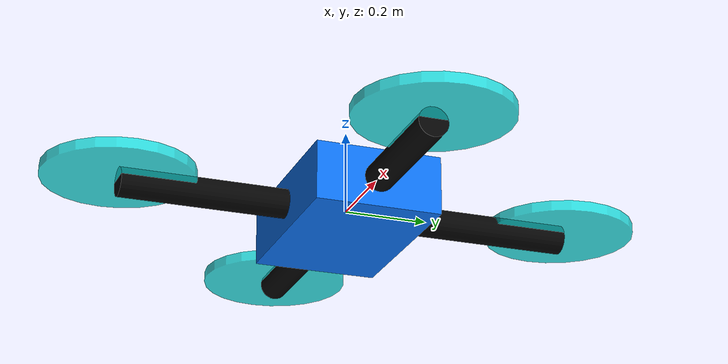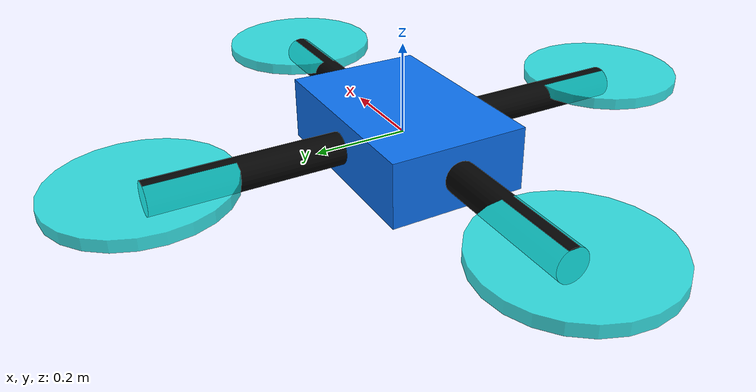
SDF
<?xml version="1.0"?>
<sdf version="1.6">
  <model name="target_uav">
    <static>false</static>
    <self_collide>false</self_collide>
    <link name="base_link">
      <gravity>false</gravity>
      <inertial>
        <mass>0.5</mass>
        <inertia>
          <ixx>0.02</ixx>
          <iyy>0.02</iyy>
          <izz>0.04</izz>
          <ixy>0</ixy>
          <ixz>0</ixz>
          <iyz>0</iyz>
        </inertia>
      </inertial>

      <collision name="lidar_detection_collision">
        <pose>0 0 0.03 0 0 0</pose>
        <laser_retro>200</laser_retro>
        <geometry>
          <box>
            <size>1.20 1.20 0.30</size>
          </box>
        </geometry>
      </collision>

      <visual name="body">
        <geometry>
          <box>
            <size>0.45 0.30 0.14</size>
          </box>
        </geometry>
        <material>
          <ambient>0.05 0.45 0.95 1</ambient>
          <diffuse>0.05 0.45 0.95 1</diffuse>
          <specular>0.1 0.1 0.1 1</specular>
        </material>
      </visual>

      <visual name="arm_x">
        <pose>0 0 0 0 1.57079632679 0</pose>
        <geometry>
          <cylinder>
            <radius>0.035</radius>
            <length>1.10</length>
          </cylinder>
        </geometry>
        <material>
          <ambient>0.02 0.02 0.02 1</ambient>
          <diffuse>0.02 0.02 0.02 1</diffuse>
        </material>
      </visual>

      <visual name="arm_y">
        <pose>0 0 0 1.57079632679 0 0</pose>
        <geometry>
          <cylinder>
            <radius>0.035</radius>
            <length>1.10</length>
          </cylinder>
        </geometry>
        <material>
          <ambient>0.02 0.02 0.02 1</ambient>
          <diffuse>0.02 0.02 0.02 1</diffuse>
        </material>
      </visual>

      <visual name="rotor_front">
        <pose>0.55 0 0.02 0 0 0</pose>
        <geometry>
          <cylinder>
            <radius>0.18</radius>
            <length>0.025</length>
          </cylinder>
        </geometry>
        <material>
          <ambient>0.1 0.9 0.9 0.85</ambient>
          <diffuse>0.1 0.9 0.9 0.85</diffuse>
        </material>
      </visual>

      <visual name="rotor_back">
        <pose>-0.55 0 0.02 0 0 0</pose>
        <geometry>
          <cylinder>
            <radius>0.18</radius>
            <length>0.025</length>
          </cylinder>
        </geometry>
        <material>
          <ambient>0.1 0.9 0.9 0.85</ambient>
          <diffuse>0.1 0.9 0.9 0.85</diffuse>
        </material>
      </visual>

      <visual name="rotor_left">
        <pose>0 0.55 0.02 0 0 0</pose>
        <geometry>
          <cylinder>
            <radius>0.18</radius>
            <length>0.025</length>
          </cylinder>
        </geometry>
        <material>
          <ambient>0.1 0.9 0.9 0.85</ambient>
          <diffuse>0.1 0.9 0.9 0.85</diffuse>
        </material>
      </visual>

      <visual name="rotor_right">
        <pose>0 -0.55 0.02 0 0 0</pose>
        <geometry>
          <cylinder>
            <radius>0.18</radius>
            <length>0.025</length>
          </cylinder>
        </geometry>
        <material>
          <ambient>0.1 0.9 0.9 0.85</ambient>
          <diffuse>0.1 0.9 0.9 0.85</diffuse>
        </material>
      </visual>
    </link>
  </model>
</sdf>
